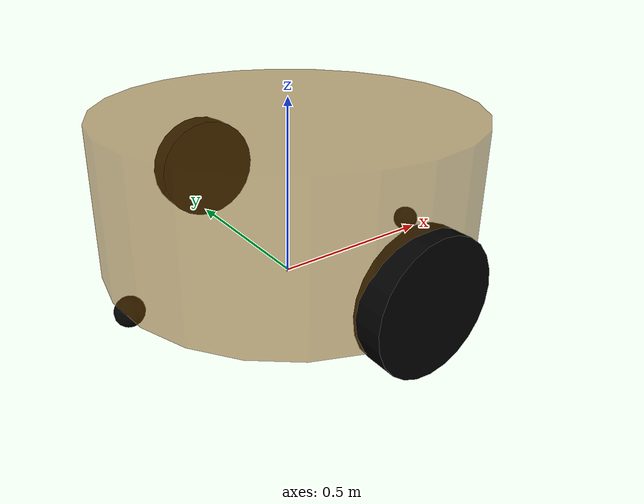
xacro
<robot name="my_base"
    xmlns:xacro="http://www.ros.org/wiki/xacro">

    <xacro:property name="PI" value="3.1415926"/>

    <material name="black">
        <color rgba="0.0 0.0 0.0 1.0" />
    </material>

    <xacro:property name="base_footprint_radius" value="0.005" />
    <xacro:property name="base_link_radius" value="0.5" />
    <xacro:property name="base_link_length" value="0.4" />
    <xacro:property name="earth_space" value="0.075" />
    <xacro:property name="base_link_m" value="0.25" />

    <link name="base_footprint">
        <visual>
            <geometry>
                <sphere radius="${base_footprint_radius}" />
            </geometry>
        </visual>
    </link>

    <link name="base_link">
        <visual>
            <geometry>
                <cylinder radius="${base_link_radius}" length="${base_link_length}" />
            </geometry>
            <origin xyz="0 0 0" rpy="0 0 0" />
            <material name="yellow">
                <color rgba="0.5 0.3 0.0 0.5" />
            </material>
        </visual>
        <collision>
            <geometry>
                <cylinder radius="${base_link_radius}" length="${base_link_length}" />
            </geometry>
            <origin xyz="0 0 0" rpy="0 0 0" />
        </collision>
        <xacro:cylinder_inertial_matrix m="${base_link_m}" r="${base_link_radius}" h="${base_link_length}" />

    </link>

    <joint name="base_link2base_footprint" type="fixed">
        <parent link="base_footprint" />
        <child link="base_link" />
        <origin xyz="0 0 ${earth_space + base_link_length / 2 }" />
    </joint>
    <gazebo reference="base_link">
        <material>Gazebo/Yellow</material>
    </gazebo>

    <xacro:property name="wheel_radius" value="0.1625" />
    <xacro:property name="wheel_length" value="0.075" />
    <xacro:property name="wheel_m" value="0.25" />

    <xacro:macro name="add_wheels" params="name flag">
        <link name="${name}_wheel">
            <visual>
                <geometry>
                    <cylinder radius="${wheel_radius}" length="${wheel_length}" />
                </geometry>
                <origin xyz="0.0 0.0 0.0" rpy="${PI / 2} 0.0 0.0" />
                <material name="black" />
            </visual>
            <collision>
                <geometry>
                    <cylinder radius="${wheel_radius}" length="${wheel_length}" />
                </geometry>
                <origin xyz="0.0 0.0 0.0" rpy="${PI / 2} 0.0 0.0" />
            </collision>
            <xacro:cylinder_inertial_matrix m="${wheel_m}" r="${wheel_radius}" h="${wheel_length}" />
        </link>

        <joint name="${name}_wheel2base_link" type="continuous">
            <parent link="base_link" />
            <child link="${name}_wheel" />
            <origin xyz="0 ${flag * base_link_radius} ${-(earth_space + base_link_length / 2 - wheel_radius) }" />
            <axis xyz="0 1 0" />
        </joint>

        <gazebo reference="${name}_wheel">
            <material>Gazebo/Red</material>
        </gazebo>

    </xacro:macro>

    <xacro:add_wheels name="left" flag="1" />
    <xacro:add_wheels name="right" flag="-1" />

    <xacro:property name="support_wheel_radius" value="0.0375" />
    <xacro:property name="support_wheel_m" value="0.09" />

    <xacro:macro name="add_support_wheel" params="name flag">
        <link name="${name}_wheel">
            <visual>
                <geometry>
                    <sphere radius="${support_wheel_radius}" />
                </geometry>
                <origin xyz="0 0 0" rpy="0 0 0" />
                <material name="black" />
            </visual>
            <collision>
                <geometry>
                    <sphere radius="${support_wheel_radius}" />
                </geometry>
                <origin xyz="0 0 0" rpy="0 0 0" />
            </collision>
            <xacro:sphere_inertial_matrix m="${support_wheel_m}" r="${support_wheel_radius}" />
        </link>

        <joint name="${name}_wheel2base_link" type="continuous">
            <parent link="base_link" />
            <child link="${name}_wheel" />
            <origin xyz="${flag * (base_link_radius - support_wheel_radius)} 0 ${-(base_link_length / 2 + earth_space / 2)}" />
            <axis xyz="1 1 1" />
        </joint>
        <gazebo reference="${name}_wheel">
            <material>Gazebo/Red</material>
        </gazebo>
    </xacro:macro>

    <xacro:add_support_wheel name="front" flag="1" />
    <xacro:add_support_wheel name="back" flag="-1" />

</robot>
